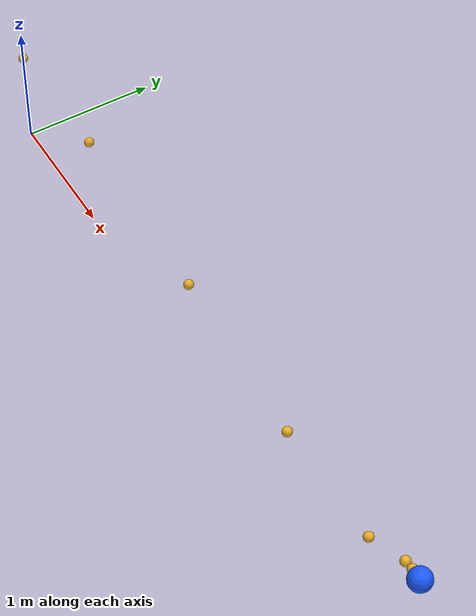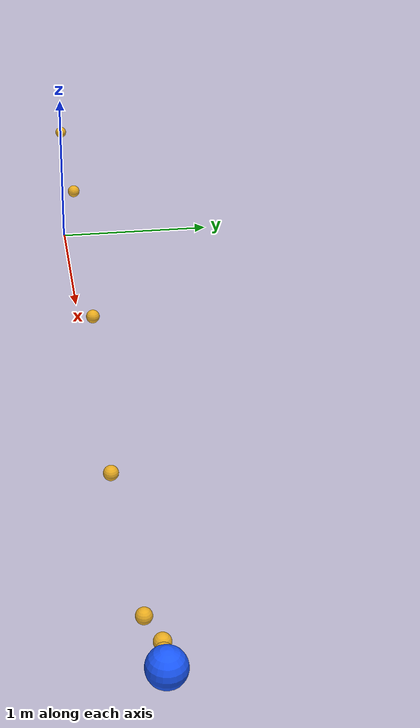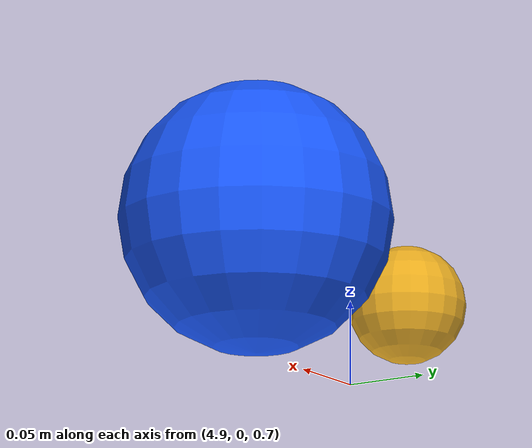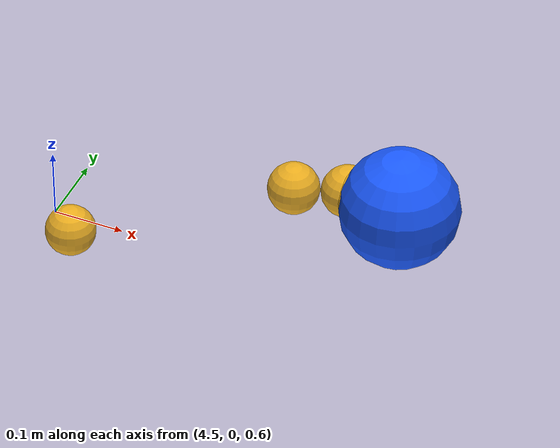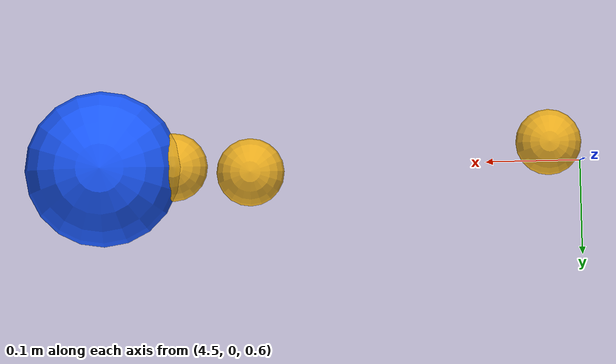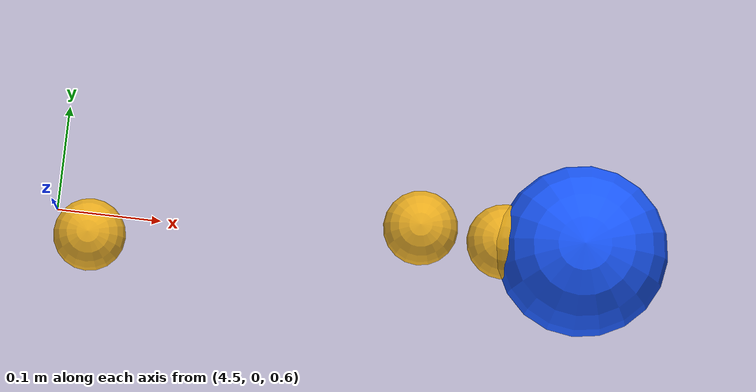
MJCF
<mujoco model="motionbricks hand raise trajectory markers">
  <worldbody>
    <geom name="mb_path_0000" type="sphere" size="0.035" pos="0.000000 0.000000 0.779602" rgba="1 0.72 0.05 0.85"/>
    <geom name="mb_path_0001" type="sphere" size="0.035" pos="1.014456 0.004295 0.800408" rgba="1 0.72 0.05 0.85"/>
    <geom name="mb_path_0002" type="sphere" size="0.035" pos="2.415494 -0.013746 0.721075" rgba="1 0.72 0.05 0.85"/>
    <geom name="mb_path_0003" type="sphere" size="0.035" pos="3.689123 -0.056645 0.657975" rgba="1 0.72 0.05 0.85"/>
    <geom name="mb_path_0004" type="sphere" size="0.035" pos="4.532852 -0.019803 0.594686" rgba="1 0.72 0.05 0.85"/>
    <geom name="mb_path_0005" type="sphere" size="0.035" pos="4.848591 0.006699 0.756755" rgba="1 0.72 0.05 0.85"/>
    <geom name="mb_path_0006" type="sphere" size="0.035" pos="4.927011 0.000060 0.783340" rgba="1 0.72 0.05 0.85"/>
    <geom name="mb_path_0007" type="sphere" size="0.035" pos="4.959521 0.000033 0.781852" rgba="1 0.72 0.05 0.85"/>
    <geom name="mb_path_0008" type="sphere" size="0.035" pos="4.993924 0.000005 0.780278" rgba="1 0.72 0.05 0.85"/>
    <geom name="mb_path_0009" type="sphere" size="0.035" pos="5.000000 0.000000 0.780000" rgba="1 0.72 0.05 0.85"/>
    <geom name="mb_path_0010" type="sphere" size="0.035" pos="5.000000 0.000000 0.780000" rgba="1 0.72 0.05 0.85"/>
    <geom name="mb_path_0011" type="sphere" size="0.035" pos="5.000000 0.000000 0.780000" rgba="1 0.72 0.05 0.85"/>
    <geom name="mb_path_0012" type="sphere" size="0.035" pos="5.000000 0.000000 0.780000" rgba="1 0.72 0.05 0.85"/>
    <geom name="mb_path_0013" type="sphere" size="0.035" pos="5.000000 0.000000 0.780000" rgba="1 0.72 0.05 0.85"/>
    <geom name="mb_path_0014" type="sphere" size="0.035" pos="5.000000 0.000000 0.780000" rgba="1 0.72 0.05 0.85"/>
    <geom name="mb_path_0015" type="sphere" size="0.035" pos="5.000000 0.000000 0.780000" rgba="1 0.72 0.05 0.85"/>
    <geom name="mb_path_0016" type="sphere" size="0.035" pos="5.000000 0.000000 0.780000" rgba="1 0.72 0.05 0.85"/>
    <geom name="mb_path_0017" type="sphere" size="0.035" pos="5.000000 0.000000 0.780000" rgba="1 0.72 0.05 0.85"/>
    <geom name="mb_path_0018" type="sphere" size="0.035" pos="5.000000 0.000000 0.780000" rgba="1 0.72 0.05 0.85"/>
    <geom name="mb_path_0019" type="sphere" size="0.035" pos="5.000000 0.000000 0.780000" rgba="1 0.72 0.05 0.85"/>
    <geom name="mb_path_0020" type="sphere" size="0.035" pos="5.000000 0.000000 0.780000" rgba="1 0.72 0.05 0.85"/>
    <geom name="mb_path_0021" type="sphere" size="0.035" pos="5.000000 0.000000 0.780000" rgba="1 0.72 0.05 0.85"/>
    <geom name="mb_path_0022" type="sphere" size="0.035" pos="5.000000 0.000000 0.780000" rgba="1 0.72 0.05 0.85"/>
    <geom name="mb_target" type="sphere" size="0.08" pos="5.000000 0.000000 0.780000" rgba="0.1 0.35 1 1"/>
  </worldbody>
</mujoco>
